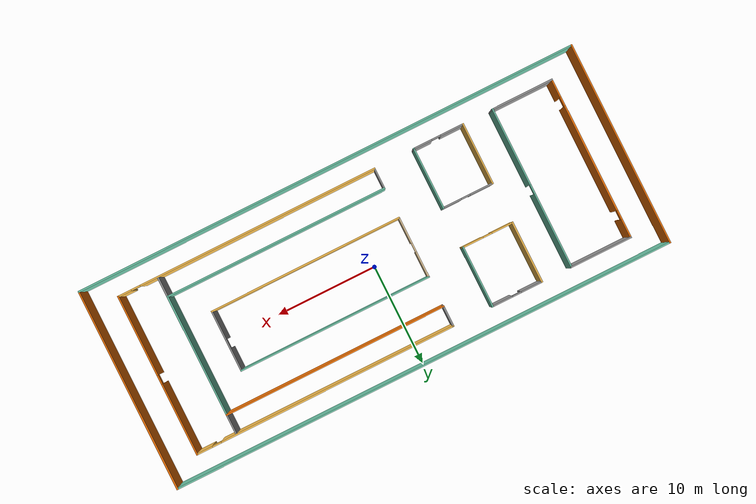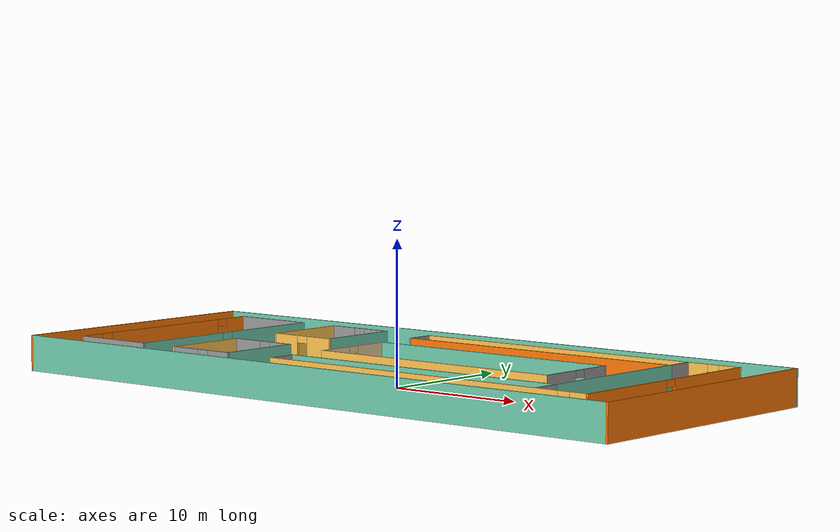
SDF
<?xml version='1.0'?>
<sdf version='1.6'>
  <model name='buildingbig'>
    <pose frame=''>0 0 0 0 -0 0</pose>
    <link name='Wall_0'>
      <collision name='Wall_0_Collision'>
        <geometry>
          <box>
            <size>20.15 0.15 2.5</size>
          </box>
        </geometry>
        <pose frame=''>0 0 1.25 0 -0 0</pose>
      </collision>
      <visual name='Wall_0_Visual'>
        <pose frame=''>0 0 1.25 0 -0 0</pose>
        <geometry>
          <box>
            <size>20.15 0.15 2.5</size>
          </box>
        </geometry>
        <material>
          <script>
            <uri>file://media/materials/scripts/gazebo.material</uri>
            <name>Gazebo/Grey</name>
          </script>
          <ambient>0.996078 0.47451 0.0196078 1</ambient>
        </material>
        <meta>
          <layer>0</layer>
        </meta>
      </visual>
      <pose frame=''>-25 0 0 0 0 -1.5708</pose>
    </link>
    <link name='Wall_13'>
      <collision name='Wall_13_Collision'>
        <geometry>
          <box>
            <size>50.15 0.15 2.5</size>
          </box>
        </geometry>
        <pose frame=''>0 0 1.25 0 -0 0</pose>
      </collision>
      <visual name='Wall_13_Visual'>
        <pose frame=''>0 0 1.25 0 -0 0</pose>
        <geometry>
          <box>
            <size>50.15 0.15 2.5</size>
          </box>
        </geometry>
        <material>
          <script>
            <uri>file://media/materials/scripts/gazebo.material</uri>
            <name>Gazebo/Grey</name>
          </script>
          <ambient>0.435294 0.796078 0.67451 1</ambient>
        </material>
        <meta>
          <layer>0</layer>
        </meta>
      </visual>
      <pose frame=''>0 -10 0 0 -0 0</pose>
    </link>
    <link name='Wall_17'>
      <pose frame=''>-22 0 0 0 0 -1.5708</pose>
      <visual name='Wall_17_Visual_0'>
        <pose frame=''>-7.12766 0 1.25 0 -0 0</pose>
        <geometry>
          <box>
            <size>1.89468 0.15 2.5</size>
          </box>
        </geometry>
        <material>
          <script>
            <uri>file://media/materials/scripts/gazebo.material</uri>
            <name>Gazebo/Grey</name>
          </script>
          <ambient>0.996078 0.47451 0.0196078 1</ambient>
        </material>
        <meta>
          <layer>0</layer>
        </meta>
      </visual>
      <collision name='Wall_17_Collision_0'>
        <geometry>
          <box>
            <size>1.89468 0.15 2.5</size>
          </box>
        </geometry>
        <pose frame=''>-7.12766 0 1.25 0 -0 0</pose>
      </collision>
      <visual name='Wall_17_Visual_1'>
        <pose frame=''>0.030492 0 1.25 0 -0 0</pose>
        <geometry>
          <box>
            <size>10.6216 0.15 2.5</size>
          </box>
        </geometry>
        <material>
          <script>
            <uri>file://media/materials/scripts/gazebo.material</uri>
            <name>Gazebo/Grey</name>
          </script>
          <ambient>0.996078 0.47451 0.0196078 1</ambient>
        </material>
        <meta>
          <layer>0</layer>
        </meta>
      </visual>
      <collision name='Wall_17_Collision_1'>
        <geometry>
          <box>
            <size>10.6216 0.15 2.5</size>
          </box>
        </geometry>
        <pose frame=''>0.030492 0 1.25 0 -0 0</pose>
      </collision>
      <visual name='Wall_17_Visual_2'>
        <pose frame=''>7.15815 0 1.25 0 -0 0</pose>
        <geometry>
          <box>
            <size>1.8337 0.15 2.5</size>
          </box>
        </geometry>
        <material>
          <script>
            <uri>file://media/materials/scripts/gazebo.material</uri>
            <name>Gazebo/Grey</name>
          </script>
          <ambient>0.996078 0.47451 0.0196078 1</ambient>
        </material>
        <meta>
          <layer>0</layer>
        </meta>
      </visual>
      <collision name='Wall_17_Collision_2'>
        <geometry>
          <box>
            <size>1.8337 0.15 2.5</size>
          </box>
        </geometry>
        <pose frame=''>7.15815 0 1.25 0 -0 0</pose>
      </collision>
      <visual name='Wall_17_Visual_3'>
        <pose frame=''>-5.73032 0 2.25 0 -0 0</pose>
        <geometry>
          <box>
            <size>0.9 0.15 0.5</size>
          </box>
        </geometry>
        <material>
          <script>
            <uri>file://media/materials/scripts/gazebo.material</uri>
            <name>Gazebo/Grey</name>
          </script>
          <ambient>0.996078 0.47451 0.0196078 1</ambient>
        </material>
        <meta>
          <layer>0</layer>
        </meta>
      </visual>
      <collision name='Wall_17_Collision_3'>
        <geometry>
          <box>
            <size>0.9 0.15 0.5</size>
          </box>
        </geometry>
        <pose frame=''>-5.73032 0 2.25 0 -0 0</pose>
      </collision>
      <visual name='Wall_17_Visual_4'>
        <pose frame=''>5.7913 0 2.25 0 -0 0</pose>
        <geometry>
          <box>
            <size>0.9 0.15 0.5</size>
          </box>
        </geometry>
        <material>
          <script>
            <uri>file://media/materials/scripts/gazebo.material</uri>
            <name>Gazebo/Grey</name>
          </script>
          <ambient>0.996078 0.47451 0.0196078 1</ambient>
        </material>
        <meta>
          <layer>0</layer>
        </meta>
      </visual>
      <collision name='Wall_17_Collision_4'>
        <geometry>
          <box>
            <size>0.9 0.15 0.5</size>
          </box>
        </geometry>
        <pose frame=''>5.7913 0 2.25 0 -0 0</pose>
      </collision>
    </link>
    <link name='Wall_19'>
      <collision name='Wall_19_Collision'>
        <geometry>
          <box>
            <size>6.15 0.15 2.5</size>
          </box>
        </geometry>
        <pose frame=''>0 0 1.25 0 -0 0</pose>
      </collision>
      <visual name='Wall_19_Visual'>
        <pose frame=''>0 0 1.25 0 -0 0</pose>
        <geometry>
          <box>
            <size>6.15 0.15 2.5</size>
          </box>
        </geometry>
        <material>
          <script>
            <uri>file://media/materials/scripts/gazebo.material</uri>
            <name>Gazebo/Grey</name>
          </script>
          <ambient>1 1 1 1</ambient>
        </material>
        <meta>
          <layer>0</layer>
        </meta>
      </visual>
      <pose frame=''>-19 8 0 0 -0 0</pose>
    </link>
    <link name='Wall_2'>
      <collision name='Wall_2_Collision'>
        <geometry>
          <box>
            <size>20.15 0.15 2.5</size>
          </box>
        </geometry>
        <pose frame=''>0 0 1.25 0 -0 0</pose>
      </collision>
      <visual name='Wall_2_Visual'>
        <pose frame=''>0 0 1.25 0 -0 0</pose>
        <geometry>
          <box>
            <size>20.15 0.15 2.5</size>
          </box>
        </geometry>
        <material>
          <script>
            <uri>file://media/materials/scripts/gazebo.material</uri>
            <name>Gazebo/Grey</name>
          </script>
          <ambient>0.996078 0.47451 0.0196078 1</ambient>
        </material>
        <meta>
          <layer>0</layer>
        </meta>
      </visual>
      <pose frame=''>25 0 0 0 -0 1.5708</pose>
    </link>
    <link name='Wall_20'>
      <pose frame=''>-16 0 0 0 0 -1.5708</pose>
      <visual name='Wall_20_Visual_0'>
        <pose frame=''>-4.31867 0 1.25 0 -0 0</pose>
        <geometry>
          <box>
            <size>7.51266 0.15 2.5</size>
          </box>
        </geometry>
        <material>
          <script>
            <uri>file://media/materials/scripts/gazebo.material</uri>
            <name>Gazebo/Grey</name>
          </script>
          <ambient>0.435294 0.796078 0.67451 1</ambient>
        </material>
        <meta>
          <layer>0</layer>
        </meta>
      </visual>
      <collision name='Wall_20_Collision_0'>
        <geometry>
          <box>
            <size>7.51266 0.15 2.5</size>
          </box>
        </geometry>
        <pose frame=''>-4.31867 0 1.25 0 -0 0</pose>
      </collision>
      <visual name='Wall_20_Visual_1'>
        <pose frame=''>4.20633 0 1.25 0 -0 0</pose>
        <geometry>
          <box>
            <size>7.73734 0.15 2.5</size>
          </box>
        </geometry>
        <material>
          <script>
            <uri>file://media/materials/scripts/gazebo.material</uri>
            <name>Gazebo/Grey</name>
          </script>
          <ambient>0.435294 0.796078 0.67451 1</ambient>
        </material>
        <meta>
          <layer>0</layer>
        </meta>
      </visual>
      <collision name='Wall_20_Collision_1'>
        <geometry>
          <box>
            <size>7.73734 0.15 2.5</size>
          </box>
        </geometry>
        <pose frame=''>4.20633 0 1.25 0 -0 0</pose>
      </collision>
      <visual name='Wall_20_Visual_2'>
        <pose frame=''>-0.112338 0 2.25 0 -0 0</pose>
        <geometry>
          <box>
            <size>0.9 0.15 0.5</size>
          </box>
        </geometry>
        <material>
          <script>
            <uri>file://media/materials/scripts/gazebo.material</uri>
            <name>Gazebo/Grey</name>
          </script>
          <ambient>0.435294 0.796078 0.67451 1</ambient>
        </material>
        <meta>
          <layer>0</layer>
        </meta>
      </visual>
      <collision name='Wall_20_Collision_2'>
        <geometry>
          <box>
            <size>0.9 0.15 0.5</size>
          </box>
        </geometry>
        <pose frame=''>-0.112338 0 2.25 0 -0 0</pose>
      </collision>
    </link>
    <link name='Wall_21'>
      <collision name='Wall_21_Collision'>
        <geometry>
          <box>
            <size>6.15 0.15 2.5</size>
          </box>
        </geometry>
        <pose frame=''>0 0 1.25 0 -0 0</pose>
      </collision>
      <visual name='Wall_21_Visual'>
        <pose frame=''>0 0 1.25 0 -0 0</pose>
        <geometry>
          <box>
            <size>6.15 0.15 2.5</size>
          </box>
        </geometry>
        <material>
          <script>
            <uri>file://media/materials/scripts/gazebo.material</uri>
            <name>Gazebo/Grey</name>
          </script>
          <ambient>1 1 1 1</ambient>
        </material>
        <meta>
          <layer>0</layer>
        </meta>
      </visual>
      <pose frame=''>-19 -8 0 0 -0 3.14159</pose>
    </link>
    <link name='Wall_23'>
      <collision name='Wall_23_Collision'>
        <geometry>
          <box>
            <size>6.15 0.15 2.5</size>
          </box>
        </geometry>
        <pose frame=''>0 0 1.25 0 -0 0</pose>
      </collision>
      <visual name='Wall_23_Visual'>
        <pose frame=''>0 0 1.25 0 -0 0</pose>
        <geometry>
          <box>
            <size>6.15 0.15 2.5</size>
          </box>
        </geometry>
        <material>
          <script>
            <uri>file://media/materials/scripts/gazebo.material</uri>
            <name>Gazebo/Grey</name>
          </script>
          <ambient>1 0.764706 0.305882 1</ambient>
        </material>
        <meta>
          <layer>0</layer>
        </meta>
      </visual>
      <pose frame=''>-13 5 0 0 0 -1.5708</pose>
    </link>
    <link name='Wall_25'>
      <pose frame=''>-10.5 8 0 0 -0 0</pose>
      <visual name='Wall_25_Visual_0'>
        <pose frame=''>-1.4906 0 1.25 0 -0 0</pose>
        <geometry>
          <box>
            <size>2.16879 0.15 2.5</size>
          </box>
        </geometry>
        <material>
          <script>
            <uri>file://media/materials/scripts/gazebo.material</uri>
            <name>Gazebo/Grey</name>
          </script>
          <ambient>1 1 1 1</ambient>
        </material>
        <meta>
          <layer>0</layer>
        </meta>
      </visual>
      <collision name='Wall_25_Collision_0'>
        <geometry>
          <box>
            <size>2.16879 0.15 2.5</size>
          </box>
        </geometry>
        <pose frame=''>-1.4906 0 1.25 0 -0 0</pose>
      </collision>
      <visual name='Wall_25_Visual_1'>
        <pose frame=''>1.5344 0 1.25 0 -0 0</pose>
        <geometry>
          <box>
            <size>2.08121 0.15 2.5</size>
          </box>
        </geometry>
        <material>
          <script>
            <uri>file://media/materials/scripts/gazebo.material</uri>
            <name>Gazebo/Grey</name>
          </script>
          <ambient>1 1 1 1</ambient>
        </material>
        <meta>
          <layer>0</layer>
        </meta>
      </visual>
      <collision name='Wall_25_Collision_1'>
        <geometry>
          <box>
            <size>2.08121 0.15 2.5</size>
          </box>
        </geometry>
        <pose frame=''>1.5344 0 1.25 0 -0 0</pose>
      </collision>
      <visual name='Wall_25_Visual_2'>
        <pose frame=''>0.043795 0 2.25 0 -0 0</pose>
        <geometry>
          <box>
            <size>0.9 0.15 0.5</size>
          </box>
        </geometry>
        <material>
          <script>
            <uri>file://media/materials/scripts/gazebo.material</uri>
            <name>Gazebo/Grey</name>
          </script>
          <ambient>1 1 1 1</ambient>
        </material>
        <meta>
          <layer>0</layer>
        </meta>
      </visual>
      <collision name='Wall_25_Collision_2'>
        <geometry>
          <box>
            <size>0.9 0.15 0.5</size>
          </box>
        </geometry>
        <pose frame=''>0.043795 0 2.25 0 -0 0</pose>
      </collision>
    </link>
    <link name='Wall_26'>
      <collision name='Wall_26_Collision'>
        <geometry>
          <box>
            <size>6.15 0.15 2.5</size>
          </box>
        </geometry>
        <pose frame=''>0 0 1.25 0 -0 0</pose>
      </collision>
      <visual name='Wall_26_Visual'>
        <pose frame=''>0 0 1.25 0 -0 0</pose>
        <geometry>
          <box>
            <size>6.15 0.15 2.5</size>
          </box>
        </geometry>
        <material>
          <script>
            <uri>file://media/materials/scripts/gazebo.material</uri>
            <name>Gazebo/Grey</name>
          </script>
          <ambient>0.435294 0.796078 0.67451 1</ambient>
        </material>
        <meta>
          <layer>0</layer>
        </meta>
      </visual>
      <pose frame=''>-8 5 0 0 0 -1.5708</pose>
    </link>
    <link name='Wall_27'>
      <pose frame=''>-10.5 2 0 0 -0 3.14159</pose>
      <visual name='Wall_27_Visual_0'>
        <pose frame=''>-1.5344 0 1.25 0 -0 0</pose>
        <geometry>
          <box>
            <size>2.08121 0.15 2.5</size>
          </box>
        </geometry>
        <material>
          <script>
            <uri>file://media/materials/scripts/gazebo.material</uri>
            <name>Gazebo/Grey</name>
          </script>
          <ambient>1 0.764706 0.305882 1</ambient>
        </material>
        <meta>
          <layer>0</layer>
        </meta>
      </visual>
      <collision name='Wall_27_Collision_0'>
        <geometry>
          <box>
            <size>2.08121 0.15 2.5</size>
          </box>
        </geometry>
        <pose frame=''>-1.5344 0 1.25 0 -0 0</pose>
      </collision>
      <visual name='Wall_27_Visual_1'>
        <pose frame=''>1.4906 0 1.25 0 -0 0</pose>
        <geometry>
          <box>
            <size>2.16879 0.15 2.5</size>
          </box>
        </geometry>
        <material>
          <script>
            <uri>file://media/materials/scripts/gazebo.material</uri>
            <name>Gazebo/Grey</name>
          </script>
          <ambient>1 0.764706 0.305882 1</ambient>
        </material>
        <meta>
          <layer>0</layer>
        </meta>
      </visual>
      <collision name='Wall_27_Collision_1'>
        <geometry>
          <box>
            <size>2.16879 0.15 2.5</size>
          </box>
        </geometry>
        <pose frame=''>1.4906 0 1.25 0 -0 0</pose>
      </collision>
      <visual name='Wall_27_Visual_2'>
        <pose frame=''>-0.043795 0 2.25 0 -0 0</pose>
        <geometry>
          <box>
            <size>0.9 0.15 0.5</size>
          </box>
        </geometry>
        <material>
          <script>
            <uri>file://media/materials/scripts/gazebo.material</uri>
            <name>Gazebo/Grey</name>
          </script>
          <ambient>1 0.764706 0.305882 1</ambient>
        </material>
        <meta>
          <layer>0</layer>
        </meta>
      </visual>
      <collision name='Wall_27_Collision_2'>
        <geometry>
          <box>
            <size>0.9 0.15 0.5</size>
          </box>
        </geometry>
        <pose frame=''>-0.043795 0 2.25 0 -0 0</pose>
      </collision>
    </link>
    <link name='Wall_29'>
      <collision name='Wall_29_Collision'>
        <geometry>
          <box>
            <size>6.15 0.15 2.5</size>
          </box>
        </geometry>
        <pose frame=''>0 0 1.25 0 -0 0</pose>
      </collision>
      <visual name='Wall_29_Visual'>
        <pose frame=''>0 0 1.25 0 -0 0</pose>
        <geometry>
          <box>
            <size>6.15 0.15 2.5</size>
          </box>
        </geometry>
        <material>
          <script>
            <uri>file://media/materials/scripts/gazebo.material</uri>
            <name>Gazebo/Grey</name>
          </script>
          <ambient>1 0.764706 0.305882 1</ambient>
        </material>
        <meta>
          <layer>0</layer>
        </meta>
      </visual>
      <pose frame=''>-13 -5 0 0 -0 1.5708</pose>
    </link>
    <link name='Wall_3'>
      <collision name='Wall_3_Collision'>
        <geometry>
          <box>
            <size>50.15 0.15 2.5</size>
          </box>
        </geometry>
        <pose frame=''>0 0 1.25 0 -0 0</pose>
      </collision>
      <visual name='Wall_3_Visual'>
        <pose frame=''>0 0 1.25 0 -0 0</pose>
        <geometry>
          <box>
            <size>50.15 0.15 2.5</size>
          </box>
        </geometry>
        <material>
          <script>
            <uri>file://media/materials/scripts/gazebo.material</uri>
            <name>Gazebo/Grey</name>
          </script>
          <ambient>0.435294 0.796078 0.67451 1</ambient>
        </material>
        <meta>
          <layer>0</layer>
        </meta>
      </visual>
      <pose frame=''>0 10 0 0 -0 3.14159</pose>
    </link>
    <link name='Wall_30'>
      <pose frame=''>-10.5 -2 0 0 -0 0</pose>
      <visual name='Wall_30_Visual_0'>
        <pose frame=''>-1.39538 0 1.25 0 -0 0</pose>
        <geometry>
          <box>
            <size>2.35923 0.15 2.5</size>
          </box>
        </geometry>
        <material>
          <script>
            <uri>file://media/materials/scripts/gazebo.material</uri>
            <name>Gazebo/Grey</name>
          </script>
          <ambient>1 1 1 1</ambient>
        </material>
        <meta>
          <layer>0</layer>
        </meta>
      </visual>
      <collision name='Wall_30_Collision_0'>
        <geometry>
          <box>
            <size>2.35923 0.15 2.5</size>
          </box>
        </geometry>
        <pose frame=''>-1.39538 0 1.25 0 -0 0</pose>
      </collision>
      <visual name='Wall_30_Visual_1'>
        <pose frame=''>1.62962 0 1.25 0 -0 0</pose>
        <geometry>
          <box>
            <size>1.89077 0.15 2.5</size>
          </box>
        </geometry>
        <material>
          <script>
            <uri>file://media/materials/scripts/gazebo.material</uri>
            <name>Gazebo/Grey</name>
          </script>
          <ambient>1 1 1 1</ambient>
        </material>
        <meta>
          <layer>0</layer>
        </meta>
      </visual>
      <collision name='Wall_30_Collision_1'>
        <geometry>
          <box>
            <size>1.89077 0.15 2.5</size>
          </box>
        </geometry>
        <pose frame=''>1.62962 0 1.25 0 -0 0</pose>
      </collision>
      <visual name='Wall_30_Visual_2'>
        <pose frame=''>0.234235 0 2.25 0 -0 0</pose>
        <geometry>
          <box>
            <size>0.9 0.15 0.5</size>
          </box>
        </geometry>
        <material>
          <script>
            <uri>file://media/materials/scripts/gazebo.material</uri>
            <name>Gazebo/Grey</name>
          </script>
          <ambient>1 1 1 1</ambient>
        </material>
        <meta>
          <layer>0</layer>
        </meta>
      </visual>
      <collision name='Wall_30_Collision_2'>
        <geometry>
          <box>
            <size>0.9 0.15 0.5</size>
          </box>
        </geometry>
        <pose frame=''>0.234235 0 2.25 0 -0 0</pose>
      </collision>
    </link>
    <link name='Wall_31'>
      <collision name='Wall_31_Collision'>
        <geometry>
          <box>
            <size>6.15 0.15 2.5</size>
          </box>
        </geometry>
        <pose frame=''>0 0 1.25 0 -0 0</pose>
      </collision>
      <visual name='Wall_31_Visual'>
        <pose frame=''>0 0 1.25 0 -0 0</pose>
        <geometry>
          <box>
            <size>6.15 0.15 2.5</size>
          </box>
        </geometry>
        <material>
          <script>
            <uri>file://media/materials/scripts/gazebo.material</uri>
            <name>Gazebo/Grey</name>
          </script>
          <ambient>0.435294 0.796078 0.67451 1</ambient>
        </material>
        <meta>
          <layer>0</layer>
        </meta>
      </visual>
      <pose frame=''>-8 -5 0 0 0 -1.5708</pose>
    </link>
    <link name='Wall_32'>
      <pose frame=''>-10.5 -8 0 0 -0 3.14159</pose>
      <visual name='Wall_32_Visual_0'>
        <pose frame=''>-1.62971 0 1.25 0 -0 0</pose>
        <geometry>
          <box>
            <size>1.89095 0.15 2.5</size>
          </box>
        </geometry>
        <material>
          <script>
            <uri>file://media/materials/scripts/gazebo.material</uri>
            <name>Gazebo/Grey</name>
          </script>
          <ambient>1 1 1 1</ambient>
        </material>
        <meta>
          <layer>0</layer>
        </meta>
      </visual>
      <collision name='Wall_32_Collision_0'>
        <geometry>
          <box>
            <size>1.89095 0.15 2.5</size>
          </box>
        </geometry>
        <pose frame=''>-1.62971 0 1.25 0 -0 0</pose>
      </collision>
      <visual name='Wall_32_Visual_1'>
        <pose frame=''>1.39548 0 1.25 0 -0 0</pose>
        <geometry>
          <box>
            <size>2.35942 0.15 2.5</size>
          </box>
        </geometry>
        <material>
          <script>
            <uri>file://media/materials/scripts/gazebo.material</uri>
            <name>Gazebo/Grey</name>
          </script>
          <ambient>1 1 1 1</ambient>
        </material>
        <meta>
          <layer>0</layer>
        </meta>
      </visual>
      <collision name='Wall_32_Collision_1'>
        <geometry>
          <box>
            <size>2.35942 0.15 2.5</size>
          </box>
        </geometry>
        <pose frame=''>1.39548 0 1.25 0 -0 0</pose>
      </collision>
      <visual name='Wall_32_Visual_2'>
        <pose frame=''>-0.234235 0 2.25 0 -0 0</pose>
        <geometry>
          <box>
            <size>0.9 0.15 0.5</size>
          </box>
        </geometry>
        <material>
          <script>
            <uri>file://media/materials/scripts/gazebo.material</uri>
            <name>Gazebo/Grey</name>
          </script>
          <ambient>1 1 1 1</ambient>
        </material>
        <meta>
          <layer>0</layer>
        </meta>
      </visual>
      <collision name='Wall_32_Collision_2'>
        <geometry>
          <box>
            <size>0.9 0.15 0.5</size>
          </box>
        </geometry>
        <pose frame=''>-0.234235 0 2.25 0 -0 0</pose>
      </collision>
    </link>
    <link name='Wall_34'>
      <pose frame=''>-4 0 0 0 0 -1.5708</pose>
      <visual name='Wall_34_Visual_0'>
        <pose frame=''>-1.77106 0 1.25 0 -0 0</pose>
        <geometry>
          <box>
            <size>2.60788 0.15 2.5</size>
          </box>
        </geometry>
        <material>
          <script>
            <uri>file://media/materials/scripts/gazebo.material</uri>
            <name>Gazebo/Grey</name>
          </script>
          <ambient>0.921569 0.807843 0.615686 1</ambient>
        </material>
        <meta>
          <layer>0</layer>
        </meta>
      </visual>
      <collision name='Wall_34_Collision_0'>
        <geometry>
          <box>
            <size>2.60788 0.15 2.5</size>
          </box>
        </geometry>
        <pose frame=''>-1.77106 0 1.25 0 -0 0</pose>
      </collision>
      <visual name='Wall_34_Visual_1'>
        <pose frame=''>1.75394 0 1.25 0 -0 0</pose>
        <geometry>
          <box>
            <size>2.64212 0.15 2.5</size>
          </box>
        </geometry>
        <material>
          <script>
            <uri>file://media/materials/scripts/gazebo.material</uri>
            <name>Gazebo/Grey</name>
          </script>
          <ambient>0.921569 0.807843 0.615686 1</ambient>
        </material>
        <meta>
          <layer>0</layer>
        </meta>
      </visual>
      <collision name='Wall_34_Collision_1'>
        <geometry>
          <box>
            <size>2.64212 0.15 2.5</size>
          </box>
        </geometry>
        <pose frame=''>1.75394 0 1.25 0 -0 0</pose>
      </collision>
      <visual name='Wall_34_Visual_2'>
        <pose frame=''>-0.017118 0 2.25 0 -0 0</pose>
        <geometry>
          <box>
            <size>0.9 0.15 0.5</size>
          </box>
        </geometry>
        <material>
          <script>
            <uri>file://media/materials/scripts/gazebo.material</uri>
            <name>Gazebo/Grey</name>
          </script>
          <ambient>0.921569 0.807843 0.615686 1</ambient>
        </material>
        <meta>
          <layer>0</layer>
        </meta>
      </visual>
      <collision name='Wall_34_Collision_2'>
        <geometry>
          <box>
            <size>0.9 0.15 0.5</size>
          </box>
        </geometry>
        <pose frame=''>-0.017118 0 2.25 0 -0 0</pose>
      </collision>
    </link>
    <link name='Wall_35'>
      <collision name='Wall_35_Collision'>
        <geometry>
          <box>
            <size>19.15 0.15 2.5</size>
          </box>
        </geometry>
        <pose frame=''>0 0 1.25 0 -0 0</pose>
      </collision>
      <visual name='Wall_35_Visual'>
        <pose frame=''>0 0 1.25 0 -0 0</pose>
        <geometry>
          <box>
            <size>19.15 0.15 2.5</size>
          </box>
        </geometry>
        <material>
          <script>
            <uri>file://media/materials/scripts/gazebo.material</uri>
            <name>Gazebo/Grey</name>
          </script>
          <ambient>1 0.764706 0.305882 1</ambient>
        </material>
        <meta>
          <layer>0</layer>
        </meta>
      </visual>
      <pose frame=''>5.5 -3 0 0 -0 0</pose>
    </link>
    <link name='Wall_36'>
      <pose frame=''>15 0 0 0 -0 1.5708</pose>
      <visual name='Wall_36_Visual_0'>
        <pose frame=''>-1.61111 0 1.25 0 -0 0</pose>
        <geometry>
          <box>
            <size>2.92778 0.15 2.5</size>
          </box>
        </geometry>
        <material>
          <script>
            <uri>file://media/materials/scripts/gazebo.material</uri>
            <name>Gazebo/Grey</name>
          </script>
          <ambient>1 1 1 1</ambient>
        </material>
        <meta>
          <layer>0</layer>
        </meta>
      </visual>
      <collision name='Wall_36_Collision_0'>
        <geometry>
          <box>
            <size>2.92778 0.15 2.5</size>
          </box>
        </geometry>
        <pose frame=''>-1.61111 0 1.25 0 -0 0</pose>
      </collision>
      <visual name='Wall_36_Visual_1'>
        <pose frame=''>1.91389 0 1.25 0 -0 0</pose>
        <geometry>
          <box>
            <size>2.32222 0.15 2.5</size>
          </box>
        </geometry>
        <material>
          <script>
            <uri>file://media/materials/scripts/gazebo.material</uri>
            <name>Gazebo/Grey</name>
          </script>
          <ambient>1 1 1 1</ambient>
        </material>
        <meta>
          <layer>0</layer>
        </meta>
      </visual>
      <collision name='Wall_36_Collision_1'>
        <geometry>
          <box>
            <size>2.32222 0.15 2.5</size>
          </box>
        </geometry>
        <pose frame=''>1.91389 0 1.25 0 -0 0</pose>
      </collision>
      <visual name='Wall_36_Visual_2'>
        <pose frame=''>0.302778 0 2.25 0 -0 0</pose>
        <geometry>
          <box>
            <size>0.9 0.15 0.5</size>
          </box>
        </geometry>
        <material>
          <script>
            <uri>file://media/materials/scripts/gazebo.material</uri>
            <name>Gazebo/Grey</name>
          </script>
          <ambient>1 1 1 1</ambient>
        </material>
        <meta>
          <layer>0</layer>
        </meta>
      </visual>
      <collision name='Wall_36_Collision_2'>
        <geometry>
          <box>
            <size>0.9 0.15 0.5</size>
          </box>
        </geometry>
        <pose frame=''>0.302778 0 2.25 0 -0 0</pose>
      </collision>
    </link>
    <link name='Wall_37'>
      <collision name='Wall_37_Collision'>
        <geometry>
          <box>
            <size>19.15 0.15 2.5</size>
          </box>
        </geometry>
        <pose frame=''>0 0 1.25 0 -0 0</pose>
      </collision>
      <visual name='Wall_37_Visual'>
        <pose frame=''>0 0 1.25 0 -0 0</pose>
        <geometry>
          <box>
            <size>19.15 0.15 2.5</size>
          </box>
        </geometry>
        <material>
          <script>
            <uri>file://media/materials/scripts/gazebo.material</uri>
            <name>Gazebo/Grey</name>
          </script>
          <ambient>0.435294 0.796078 0.67451 1</ambient>
        </material>
        <meta>
          <layer>0</layer>
        </meta>
      </visual>
      <pose frame=''>5.5 3 0 0 -0 3.14159</pose>
    </link>
    <link name='Wall_39'>
      <collision name='Wall_39_Collision'>
        <geometry>
          <box>
            <size>2.15 0.15 2.5</size>
          </box>
        </geometry>
        <pose frame=''>0 0 1.25 0 -0 0</pose>
      </collision>
      <visual name='Wall_39_Visual'>
        <pose frame=''>0 0 1.25 0 -0 0</pose>
        <geometry>
          <box>
            <size>2.15 0.15 2.5</size>
          </box>
        </geometry>
        <material>
          <script>
            <uri>file://media/materials/scripts/gazebo.material</uri>
            <name>Gazebo/Grey</name>
          </script>
          <ambient>1 1 1 1</ambient>
        </material>
        <meta>
          <layer>0</layer>
        </meta>
      </visual>
      <pose frame=''>-4 7 0 0 0 -1.5708</pose>
    </link>
    <link name='Wall_40'>
      <collision name='Wall_40_Collision'>
        <geometry>
          <box>
            <size>22.15 0.15 2.5</size>
          </box>
        </geometry>
        <pose frame=''>0 0 1.25 0 -0 0</pose>
      </collision>
      <visual name='Wall_40_Visual'>
        <pose frame=''>0 0 1.25 0 -0 0</pose>
        <geometry>
          <box>
            <size>22.15 0.15 2.5</size>
          </box>
        </geometry>
        <material>
          <script>
            <uri>file://media/materials/scripts/gazebo.material</uri>
            <name>Gazebo/Grey</name>
          </script>
          <ambient>0.996078 0.47451 0.0196078 1</ambient>
        </material>
        <meta>
          <layer>0</layer>
        </meta>
      </visual>
      <pose frame=''>7 6 0 0 -0 0</pose>
    </link>
    <link name='Wall_41'>
      <collision name='Wall_41_Collision'>
        <geometry>
          <box>
            <size>12.15 0.15 2.5</size>
          </box>
        </geometry>
        <pose frame=''>0 0 1.25 0 -0 0</pose>
      </collision>
      <visual name='Wall_41_Visual'>
        <pose frame=''>0 0 1.25 0 -0 0</pose>
        <geometry>
          <box>
            <size>12.15 0.15 2.5</size>
          </box>
        </geometry>
        <material>
          <script>
            <uri>file://media/materials/scripts/gazebo.material</uri>
            <name>Gazebo/Grey</name>
          </script>
          <ambient>0.435294 0.796078 0.67451 1</ambient>
        </material>
        <meta>
          <layer>0</layer>
        </meta>
      </visual>
      <pose frame=''>18 0 0 0 0 -1.5708</pose>
    </link>
    <link name='Wall_42'>
      <collision name='Wall_42_Collision'>
        <geometry>
          <box>
            <size>22.15 0.15 2.5</size>
          </box>
        </geometry>
        <pose frame=''>0 0 1.25 0 -0 0</pose>
      </collision>
      <visual name='Wall_42_Visual'>
        <pose frame=''>0 0 1.25 0 -0 0</pose>
        <geometry>
          <box>
            <size>22.15 0.15 2.5</size>
          </box>
        </geometry>
        <material>
          <script>
            <uri>file://media/materials/scripts/gazebo.material</uri>
            <name>Gazebo/Grey</name>
          </script>
          <ambient>0.435294 0.796078 0.67451 1</ambient>
        </material>
        <meta>
          <layer>0</layer>
        </meta>
      </visual>
      <pose frame=''>7 -6 0 0 -0 3.14159</pose>
    </link>
    <link name='Wall_43'>
      <collision name='Wall_43_Collision'>
        <geometry>
          <box>
            <size>2.15 0.15 2.5</size>
          </box>
        </geometry>
        <pose frame=''>0 0 1.25 0 -0 0</pose>
      </collision>
      <visual name='Wall_43_Visual'>
        <pose frame=''>0 0 1.25 0 -0 0</pose>
        <geometry>
          <box>
            <size>2.15 0.15 2.5</size>
          </box>
        </geometry>
        <material>
          <script>
            <uri>file://media/materials/scripts/gazebo.material</uri>
            <name>Gazebo/Grey</name>
          </script>
          <ambient>1 1 1 1</ambient>
        </material>
        <meta>
          <layer>0</layer>
        </meta>
      </visual>
      <pose frame=''>-4 -7 0 0 0 -1.5708</pose>
    </link>
    <link name='Wall_44'>
      <pose frame=''>9 -8 0 0 -0 0</pose>
      <visual name='Wall_44_Visual_0'>
        <pose frame=''>-1.15481 0 1.25 0 -0 0</pose>
        <geometry>
          <box>
            <size>23.8404 0.15 2.5</size>
          </box>
        </geometry>
        <material>
          <script>
            <uri>file://media/materials/scripts/gazebo.material</uri>
            <name>Gazebo/Grey</name>
          </script>
          <ambient>1 0.764706 0.305882 1</ambient>
        </material>
        <meta>
          <layer>0</layer>
        </meta>
      </visual>
      <collision name='Wall_44_Collision_0'>
        <geometry>
          <box>
            <size>23.8404 0.15 2.5</size>
          </box>
        </geometry>
        <pose frame=''>-1.15481 0 1.25 0 -0 0</pose>
      </collision>
      <visual name='Wall_44_Visual_1'>
        <pose frame=''>12.3702 0 1.25 0 -0 0</pose>
        <geometry>
          <box>
            <size>1.40963 0.15 2.5</size>
          </box>
        </geometry>
        <material>
          <script>
            <uri>file://media/materials/scripts/gazebo.material</uri>
            <name>Gazebo/Grey</name>
          </script>
          <ambient>1 0.764706 0.305882 1</ambient>
        </material>
        <meta>
          <layer>0</layer>
        </meta>
      </visual>
      <collision name='Wall_44_Collision_1'>
        <geometry>
          <box>
            <size>1.40963 0.15 2.5</size>
          </box>
        </geometry>
        <pose frame=''>12.3702 0 1.25 0 -0 0</pose>
      </collision>
      <visual name='Wall_44_Visual_2'>
        <pose frame=''>11.2154 0 2.25 0 -0 0</pose>
        <geometry>
          <box>
            <size>0.9 0.15 0.5</size>
          </box>
        </geometry>
        <material>
          <script>
            <uri>file://media/materials/scripts/gazebo.material</uri>
            <name>Gazebo/Grey</name>
          </script>
          <ambient>1 0.764706 0.305882 1</ambient>
        </material>
        <meta>
          <layer>0</layer>
        </meta>
      </visual>
      <collision name='Wall_44_Collision_2'>
        <geometry>
          <box>
            <size>0.9 0.15 0.5</size>
          </box>
        </geometry>
        <pose frame=''>11.2154 0 2.25 0 -0 0</pose>
      </collision>
    </link>
    <link name='Wall_45'>
      <pose frame=''>22 0 0 0 -0 1.5708</pose>
      <visual name='Wall_45_Visual_0'>
        <pose frame=''>-4.05267 0 1.25 0 -0 0</pose>
        <geometry>
          <box>
            <size>8.04467 0.15 2.5</size>
          </box>
        </geometry>
        <material>
          <script>
            <uri>file://media/materials/scripts/gazebo.material</uri>
            <name>Gazebo/Grey</name>
          </script>
          <ambient>0.996078 0.47451 0.0196078 1</ambient>
        </material>
        <meta>
          <layer>0</layer>
        </meta>
      </visual>
      <collision name='Wall_45_Collision_0'>
        <geometry>
          <box>
            <size>8.04467 0.15 2.5</size>
          </box>
        </geometry>
        <pose frame=''>-4.05267 0 1.25 0 -0 0</pose>
      </collision>
      <visual name='Wall_45_Visual_1'>
        <pose frame=''>4.47233 0 1.25 0 -0 0</pose>
        <geometry>
          <box>
            <size>7.20533 0.15 2.5</size>
          </box>
        </geometry>
        <material>
          <script>
            <uri>file://media/materials/scripts/gazebo.material</uri>
            <name>Gazebo/Grey</name>
          </script>
          <ambient>0.996078 0.47451 0.0196078 1</ambient>
        </material>
        <meta>
          <layer>0</layer>
        </meta>
      </visual>
      <collision name='Wall_45_Collision_1'>
        <geometry>
          <box>
            <size>7.20533 0.15 2.5</size>
          </box>
        </geometry>
        <pose frame=''>4.47233 0 1.25 0 -0 0</pose>
      </collision>
      <visual name='Wall_45_Visual_2'>
        <pose frame=''>0.419667 0 2.25 0 -0 0</pose>
        <geometry>
          <box>
            <size>0.9 0.15 0.5</size>
          </box>
        </geometry>
        <material>
          <script>
            <uri>file://media/materials/scripts/gazebo.material</uri>
            <name>Gazebo/Grey</name>
          </script>
          <ambient>0.996078 0.47451 0.0196078 1</ambient>
        </material>
        <meta>
          <layer>0</layer>
        </meta>
      </visual>
      <collision name='Wall_45_Collision_2'>
        <geometry>
          <box>
            <size>0.9 0.15 0.5</size>
          </box>
        </geometry>
        <pose frame=''>0.419667 0 2.25 0 -0 0</pose>
      </collision>
    </link>
    <link name='Wall_46'>
      <pose frame=''>9 8 0 0 -0 3.14159</pose>
      <visual name='Wall_46_Visual_0'>
        <pose frame=''>-12.2607 0 1.25 0 -0 0</pose>
        <geometry>
          <box>
            <size>1.62863 0.15 2.5</size>
          </box>
        </geometry>
        <material>
          <script>
            <uri>file://media/materials/scripts/gazebo.material</uri>
            <name>Gazebo/Grey</name>
          </script>
          <ambient>1 0.764706 0.305882 1</ambient>
        </material>
        <meta>
          <layer>0</layer>
        </meta>
      </visual>
      <collision name='Wall_46_Collision_0'>
        <geometry>
          <box>
            <size>1.62863 0.15 2.5</size>
          </box>
        </geometry>
        <pose frame=''>-12.2607 0 1.25 0 -0 0</pose>
      </collision>
      <visual name='Wall_46_Visual_1'>
        <pose frame=''>1.26432 0 1.25 0 -0 0</pose>
        <geometry>
          <box>
            <size>23.6214 0.15 2.5</size>
          </box>
        </geometry>
        <material>
          <script>
            <uri>file://media/materials/scripts/gazebo.material</uri>
            <name>Gazebo/Grey</name>
          </script>
          <ambient>1 0.764706 0.305882 1</ambient>
        </material>
        <meta>
          <layer>0</layer>
        </meta>
      </visual>
      <collision name='Wall_46_Collision_1'>
        <geometry>
          <box>
            <size>23.6214 0.15 2.5</size>
          </box>
        </geometry>
        <pose frame=''>1.26432 0 1.25 0 -0 0</pose>
      </collision>
      <visual name='Wall_46_Visual_2'>
        <pose frame=''>-10.9964 0 2.25 0 -0 0</pose>
        <geometry>
          <box>
            <size>0.9 0.15 0.5</size>
          </box>
        </geometry>
        <material>
          <script>
            <uri>file://media/materials/scripts/gazebo.material</uri>
            <name>Gazebo/Grey</name>
          </script>
          <ambient>1 0.764706 0.305882 1</ambient>
        </material>
        <meta>
          <layer>0</layer>
        </meta>
      </visual>
      <collision name='Wall_46_Collision_2'>
        <geometry>
          <box>
            <size>0.9 0.15 0.5</size>
          </box>
        </geometry>
        <pose frame=''>-10.9964 0 2.25 0 -0 0</pose>
      </collision>
    </link>
    <link name='Wall_48'>
      <collision name='Wall_48_Collision'>
        <geometry>
          <box>
            <size>2 0.15 2.5</size>
          </box>
        </geometry>
        <pose frame=''>0 0 1.25 0 -0 0</pose>
      </collision>
      <visual name='Wall_48_Visual'>
        <pose frame=''>0 0 1.25 0 -0 0</pose>
        <geometry>
          <box>
            <size>2 0.15 2.5</size>
          </box>
        </geometry>
        <material>
          <script>
            <uri>file://media/materials/scripts/gazebo.material</uri>
            <name>Gazebo/Grey</name>
          </script>
          <ambient>1 1 1 1</ambient>
        </material>
        <meta>
          <layer>0</layer>
        </meta>
      </visual>
      <pose frame=''>18 -6.925 0 0 0 -1.5708</pose>
    </link>
    <link name='Wall_50'>
      <collision name='Wall_50_Collision'>
        <geometry>
          <box>
            <size>2 0.15 2.5</size>
          </box>
        </geometry>
        <pose frame=''>0 0 1.25 0 -0 0</pose>
      </collision>
      <visual name='Wall_50_Visual'>
        <pose frame=''>0 0 1.25 0 -0 0</pose>
        <geometry>
          <box>
            <size>2 0.15 2.5</size>
          </box>
        </geometry>
        <material>
          <script>
            <uri>file://media/materials/scripts/gazebo.material</uri>
            <name>Gazebo/Grey</name>
          </script>
          <ambient>1 1 1 1</ambient>
        </material>
        <meta>
          <layer>0</layer>
        </meta>
      </visual>
      <pose frame=''>18 6.925 0 0 -0 1.5708</pose>
    </link>
    <static>1</static>
  </model>
</sdf>
